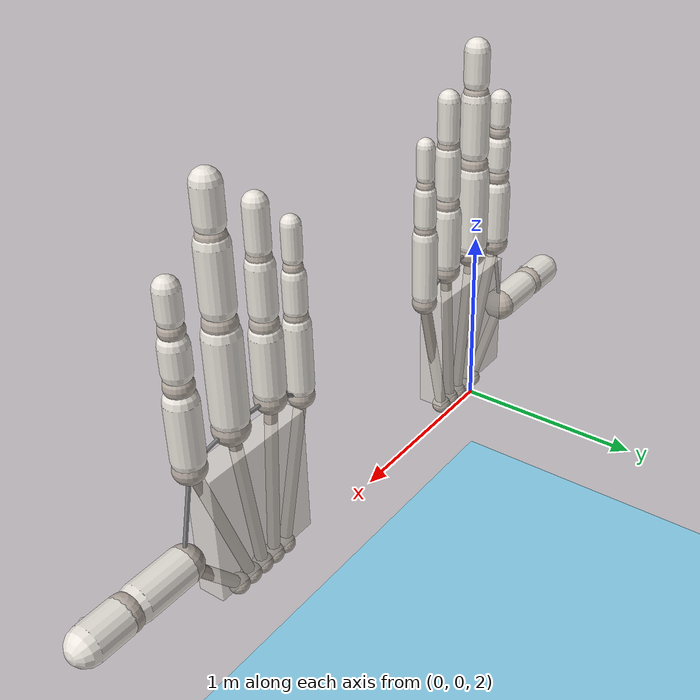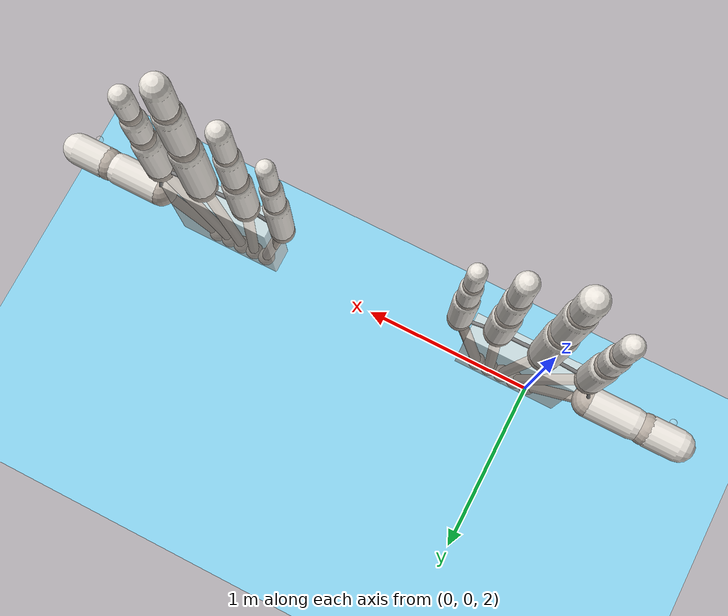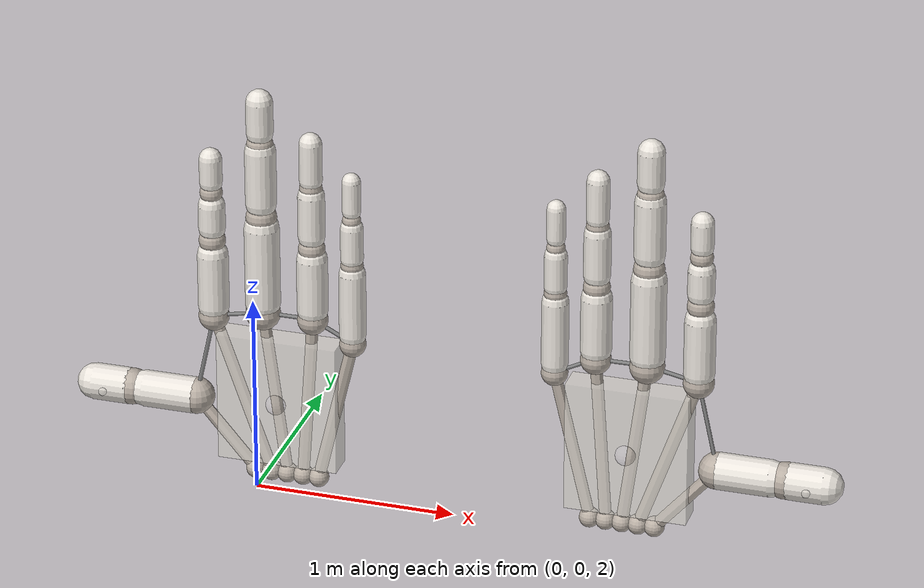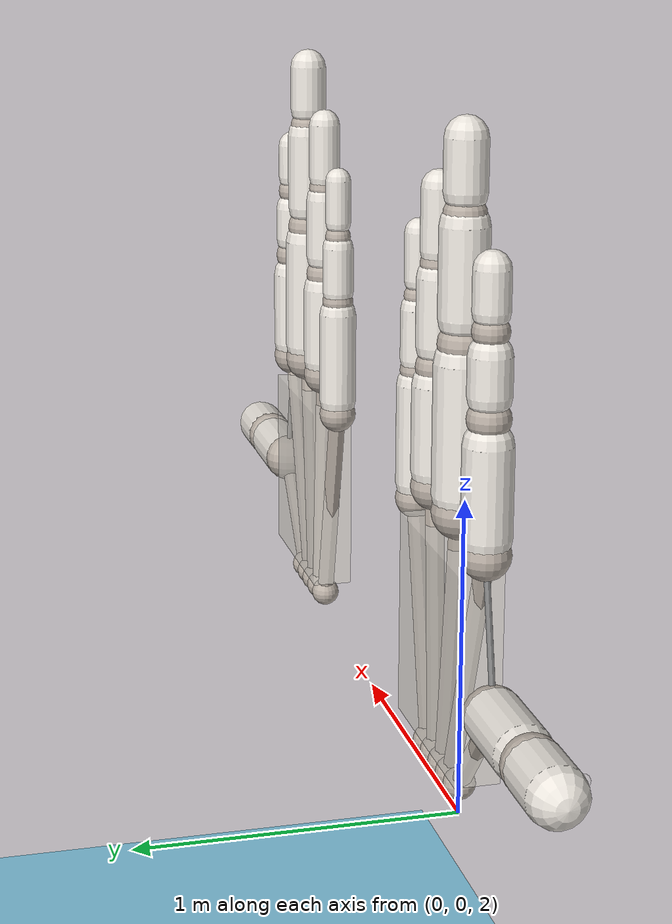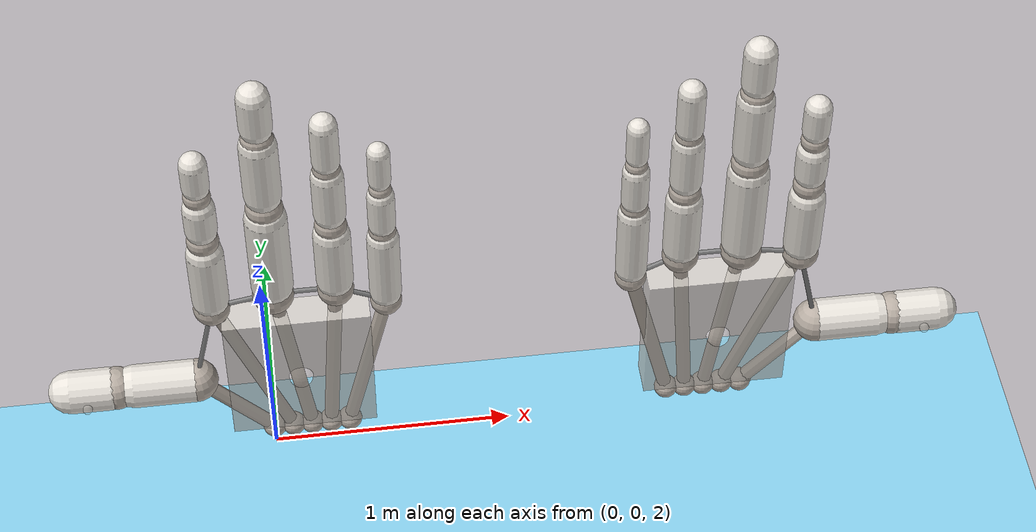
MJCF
<mujoco>
  <compiler angle="degree"/>
  <option  gravity="0 0 0" timestep="0.001"/>

  <worldbody>
    <light pos="0 0 100"/>
    <geom type="plane" size="50 50 0.1" pos="0 0 0" rgba="0.53 0.81 0.92 1"/>

    <body name="base" pos="0 0 2" euler="0 0 0">

      <site name="jointf01_site" pos="0 0 0.1"/>
      <site name="jointf02_site" pos="0.08 0 0.1"/>
      <site name="jointf03_site" pos="0.16 0 0.1"/>
      <site name="jointf04_site" pos="0.24 0 0.1"/>
      <site name="jointf05_site" pos="0.32 0 0.1"/>

      <geom name="jointf01" type="sphere" size="0.05" pos="0 0 0.1" rgba="0.72 0.68 0.64 1"/>
      <geom name="jointf02" type="sphere" size="0.05" pos="0.08 0 0.1" rgba="0.72 0.68 0.64 1"/>
      <geom name="jointf03" type="sphere" size="0.05" pos="0.16 0 0.1" rgba="0.72 0.68 0.64 1"/>
      <geom name="jointf04" type="sphere" size="0.05" pos="0.24 0 0.1" rgba="0.72 0.68 0.64 1"/>
      <geom name="jointf05" type="sphere" size="0.05" pos="0.32 0 0.1" rgba="0.72 0.68 0.64 1"/>

      <geom name="jointf07" type="box" size="0.3 0.07 0.33" pos="0.13 0 0.5" rgba="0.91 0.89 0.86 0.7" solref="0.02 2"/>
            <site name="hand_touch" size="0.05" rgba="0.91 0.89 0.86 0.2" pos=" 0.13 -0.07 0.5"/>
      <!-- Указательный палец -->
      <body name="finger1_part1">
        <joint name="jointf11" type="hinge" axis="1 0 0" pos="-0.2 0 0.9" range="0 90" damping="0.5"/>
        <site name="jointf11_site" pos="-0.2 0 0.9"/>
        <geom name="jointf11_type" type="sphere" size="0.075" pos="-0.2 0 0.9" rgba="0.72 0.68 0.64 1"/>
        <geom name="bonef11" type="capsule" size="0.075" fromto="-0.2 0 0.95 -0.2 0 1.225" rgba="0.91 0.89 0.86 1"/>

        <body name="finger1_part2">
          <joint name="jointf12" type="hinge" axis="1 0 0" pos="-0.2 0 1.3" range="0 90" damping="0.3"/>
          <site name="jointf12_site" pos="-0.2 0 1.3"/>
          <geom name="jointf12_type" type="sphere" size="0.065" pos="-0.2 0 1.3" rgba="0.72 0.68 0.64 1"/>
          <geom name="bonef12" type="capsule" size="0.065" fromto="-0.2 0 1.365 -0.2 0 1.4825" rgba="0.91 0.89 0.86 1"/>

          <body name="finger1_part3">
            <joint name="jointf13" type="hinge" axis="1 0 0" pos="-0.2 0 1.55" range="0 90" damping="0.2"/>
            <site name="jointf13_site" pos="-0.2 0 1.55"/>
            <geom name="jointf13_type" type="sphere" size="0.055" pos="-0.2 0 1.55" rgba="0.72 0.68 0.64 1"/>
            <geom name="bonef13" type="capsule" size="0.055" fromto="-0.2 0 1.605 -0.2 0 1.725" rgba="0.91 0.89 0.86 1"/>
          </body>
        </body>
      </body>

      <!-- Средний палец -->
      <body name="finger2_part1">
        <joint name="jointf21" type="hinge" axis="1 0 0" pos="0.05 0 0.95" range="0 90"/>
        <site name="jointf21_site" pos="0.05 0 0.95"/>
        <geom name="jointf21_type" type="sphere" size="0.085" pos="0.05 0 0.95" rgba="0.72 0.68 0.64 1"/>
        <geom name="bonef21" type="capsule" size="0.085" fromto="0.05 0.0 1 0.05 0.0 1.4" rgba="0.91 0.89 0.86 1"/>

        <body name="finger2_part2">
          <joint name="jointf22" type="hinge" axis="1 0 0" pos="0.05 0.0 1.4549999999999998" range="0 90" />
          <site name="jointf22_site" pos="0.05 0.0 1.4549999999999998"/>
          <geom name="jointf22_type" type="sphere" size="0.075" pos="0.05 0.0 1.454999999999999" rgba="0.72 0.68 0.64 1"/>
          <geom name="bonef22" type="capsule" size="0.075" fromto="0.05 0.0 1.5299999999999998 0.05 0.0 1.8" rgba="0.91 0.89 0.86 1"/>

          <body name="finger2_part3">
            <joint name="jointf23" type="hinge" axis="1 0 0" pos="0.05 0.0 1.8299999999999998" range="0 90" />
            <site name="jointf23_site" pos="0.05 0.0 1.8299999999999998"/>
            <geom name="jointf23_type" type="sphere" size="0.065" pos="0.05 0.0 1.8299999999999998" rgba="0.72 0.68 0.64 1"/>
            <geom name="bonef23" type="capsule" size="0.065" fromto="0.05 0.0 1.8949999999999998 0.05 0.0 2.05" rgba="0.91 0.89 0.86 1"/>
          </body>
        </body>
      </body>

      <!-- Безымянный палец -->
      <body name="finger3_part1">
        <joint name="jointf31" type="hinge" axis="1 0 0" pos="0.3 0 0.95" range="0 90"/>
        <site name="jointf31_site" pos="0.3 0 0.95"/>
        <geom name="jointf31_type" type="sphere" size="0.075" pos="0.3 0 0.95" rgba="0.72 0.68 0.64 1"/>
        <geom name="bonef31" type="capsule" size="0.075" fromto="0.3 0.0 1 0.3 0.0 1.27" rgba="0.91 0.89 0.86 1"/>

        <body name="finger3_part2">
          <joint name="jointf32" type="hinge" axis="1 0 0" pos="0.3 0.0 1.325" range="0 90" />
          <site name="jointf32_site" pos="0.3 0.0 1.325"/>
          <geom name="jointf32_type" type="sphere" size="0.065" pos="0.3 0.0 1.325" rgba="0.72 0.68 0.64 1"/>
          <geom name="bonef32" type="capsule" size="0.065" fromto="0.3 0.0 1.39 0.3 0.0 1.6" rgba="0.91 0.89 0.86 1"/>

          <body name="finger3_part3">
            <joint name="jointf33" type="hinge" axis="1 0 0" pos="0.3 0.0 1.64" range="0 90" />
            <site name="jointf33_site" pos="0.3 0.0 1.64"/>
            <geom name="jointf33_type" type="sphere" size="0.055" pos="0.3 0.0 1.64" rgba="0.72 0.68 0.64 1"/>
            <geom name="bonef33" type="capsule" size="0.055" fromto="0.3 0.0 1.68 0.3 0.0 1.87" rgba="0.91 0.89 0.86 1"/>
          </body>
        </body>
      </body>

      <!-- Мизинец -->
      <body name="finger4_part1">
        <joint name="jointf41" type="hinge" axis="1 0 0" pos="0.5 0 0.85" range="0 90"/>
        <site name="jointf41_site" pos="0.5 0 0.85"/>
        <geom name="jointf41_type" type="sphere" size="0.065" pos="0.5 0 0.85" rgba="0.72 0.68 0.64 1"/>
        <geom name="bonef41" type="capsule" size="0.065" fromto="0.5 0.0 0.9 0.5 0.0 1.22" rgba="0.91 0.89 0.86 1"/>

        <body name="finger4_part2">
          <joint name="jointf42" type="hinge" axis="1 0 0" pos="0.5 0.0 1.265" range="0 90" />
          <site name="jointf42_site" pos="0.5 0.0 1.265"/>
          <geom name="jointf42_type" type="sphere" size="0.055" pos="0.5 0.0 1.265" rgba="0.72 0.68 0.64 1"/>
          <geom name="bonef42" type="capsule" size="0.055" fromto="0.5 0.0 1.3 0.5 0.0 1.46" rgba="0.91 0.89 0.86 1"/>

          <body name="finger4_part3">
            <joint name="jointf43" type="hinge" axis="1 0 0" pos="0.5 0.0 1.5199999999999998" range="0 90" />
            <site name="jointf43_site" pos="0.5 0.0 1.5199999999999998"/>
            <site name="jointf4_tip" pos="0.5 0.0 1.7" size="0.01" />
            <geom name="jointf43_type" type="sphere" size="0.045" pos="0.5 0.0 1.5" rgba="0.72 0.68 0.64 1"/>
            <geom name="bonef43" type="capsule" size="0.045" fromto="0.5 0.0 1.55 0.5 0.0 1.7" rgba="0.91 0.89 0.86 1"/>
          </body>
        </body>
      </body>

      <body name="finger5_part1">
        <joint name="jointf51" type="hinge" axis="0 0 1" pos="-0.3 0 0.45" range="0 90"/>
        <site name="jointf51_site" pos="-0.3 0 0.45"/>
        <geom name="jointf51_type" type="sphere" size="0.09" pos="-0.3 0 0.45" rgba="0.72 0.68 0.64 1"/>
        <geom name="bonef51" type="capsule" size="0.09" fromto="-0.305 0.0 0.45 -0.56 0.0 0.45" rgba="0.91 0.89 0.86 1"/>

        <body name="finger5_part2">
          <joint name="jointf52" type="hinge" axis="0 0 1" pos="-0.63 0 0.45" range="0 90"/>
          <site name="jointf52_site" pos="-0.63 0 0.45"/>
          <site name="f5_tip" size="0.02" pos="-0.75 -0.1 0.45" rgba="0.91 0.89 0.86 0.2"/>
          <geom name="jointf52_type" type="sphere" size="0.09" pos="-0.63 0 0.45" rgba="0.72 0.68 0.64 1"/>
          <geom name="bonef52" type="capsule" size="0.09" fromto="-0.65 0 0.45 -0.82 0.0 0.45" rgba="0.91 0.89 0.86 1"/>
        </body>
      </body>
    </body>

   <!-- Right hand -->
  <body name="base2" pos="2 0 2" >
    <joint name="base2" type="slide"/>
      <site name="jointf01_site2" pos="0 0 0.1"/>
      <site name="jointf02_site2" pos="-0.08 0 0.1"/>
      <site name="jointf03_site2" pos="-0.16 0 0.1"/>
      <site name="jointf04_site2" pos="-0.24 0 0.1"/>
      <site name="jointf05_site2" pos="-0.32 0 0.1"/>

      <geom name="jointf012" type="sphere" size="0.05" pos="0 0 0.1" rgba="0.72 0.68 0.64 1"/>
      <geom name="jointf022" type="sphere" size="0.05" pos="-0.08 0 0.1" rgba="0.72 0.68 0.64 1"/>
      <geom name="jointf032" type="sphere" size="0.05" pos="-0.16 0 0.1" rgba="0.72 0.68 0.64 1"/>
      <geom name="jointf042" type="sphere" size="0.05" pos="-0.24 0 0.1" rgba="0.72 0.68 0.64 1"/>
      <geom name="jointf052" type="sphere" size="0.05" pos="-0.32 0 0.1" rgba="0.72 0.68 0.64 1"/>

      <geom name="jointf072" type="box" size="0.3 0.07 0.33" pos="-0.13 0 0.5" rgba="0.91 0.89 0.86 0.7" solref="0.02 2"/>
      <site name="hand_touch2" size="0.05" rgba="0.91 0.89 0.86 0.2" pos="-0.13 -0.07 0.5"/>

      <body name="finger1_part12">
        <joint name="jointf112" type="hinge" axis="1 0 0" pos="0.2 0 0.9" range="0 90" damping="0.5"/>
        <site name="jointf11_site2" pos="0.2 0 0.9"/>
        <geom name="jointf11_type2" type="sphere" size="0.075" pos="0.2 0 0.9" rgba="0.72 0.68 0.64 1"/>
        <geom name="bonef112" type="capsule" size="0.075" fromto="0.2 0 0.95 0.2 0 1.225" rgba="0.91 0.89 0.86 1"/>

        <body name="finger1_part22">
          <joint name="jointf122" type="hinge" axis="1 0 0" pos="0.2 0 1.3" range="0 90" damping="0.3"/>
          <site name="jointf12_site2" pos="0.2 0 1.3"/>
          <geom name="jointf12_type2" type="sphere" size="0.065" pos="0.2 0 1.3" rgba="0.72 0.68 0.64 1"/>
          <geom name="bonef122" type="capsule" size="0.065" fromto="0.2 0 1.365 0.2 0 1.4825" rgba="0.91 0.89 0.86 1"/>

          <body name="finger1_part32">
            <joint name="jointf132" type="hinge" axis="1 0 0" pos="0.2 0 1.55" range="0 90" damping="0.2"/>
            <site name="jointf13_site2" pos="0.2 0 1.55"/>
            <geom name="jointf13_type2" type="sphere" size="0.055" pos="0.2 0 1.55" rgba="0.72 0.68 0.64 1"/>
            <geom name="bonef132" type="capsule" size="0.055" fromto="0.2 0 1.605 0.2 0 1.725" rgba="0.91 0.89 0.86 1"/>
          </body>
        </body>
      </body>

       <body name="finger2_part12">
          <joint name="jointf212" type="hinge" axis="1 0 0" pos="-0.05 0 0.95" range="0 90"/>
          <site name="jointf21_site2" pos="-0.05 0 0.95"/>
          <geom name="jointf21_type2" type="sphere" size="0.085" pos="-0.05 0 0.95" rgba="0.72 0.68 0.64 1"/>
          <geom name="bonef212" type="capsule" size="0.085" fromto="-0.05 0.0 1 -0.05 0.0 1.4" rgba="0.91 0.89 0.86 1"/>

          <body name="finger2_part22">
            <joint name="jointf222" type="hinge" axis="1 0 0" pos="-0.05 0.0 1.4549999999999998" range="0 90" />
            <site name="jointf22_site2" pos="-0.05 0.0 1.4549999999999998"/>
            <geom name="jointf22_type2" type="sphere" size="0.075" pos="-0.05 0.0 1.454999999999999" rgba="0.72 0.68 0.64 1"/>
            <geom name="bonef222" type="capsule" size="0.075" fromto="-0.05 0.0 1.5299999999999998 -0.05 0.0 1.8" rgba="0.91 0.89 0.86 1"/>

            <body name="finger2_part32">
              <joint name="jointf232" type="hinge" axis="1 0 0" pos="-0.05 0.0 1.8299999999999998" range="0 90" />
              <site name="jointf23_site2" pos="-0.05 0.0 1.8299999999999998"/>
              <geom name="jointf23_type2" type="sphere" size="0.065" pos="-0.05 0.0 1.8299999999999998" rgba="0.72 0.68 0.64 1"/>
              <geom name="bonef232" type="capsule" size="0.065" fromto="-0.05 0.0 1.8949999999999998 -0.05 0.0 2.05" rgba="0.91 0.89 0.86 1"/>
            </body>
        </body>
      </body>

      <body name="finger3_part12">
        <joint name="jointf312" type="hinge" axis="1 0 0" pos="-0.3 0 0.95" range="0 90"/>
        <site name="jointf31_site2" pos="-0.3 0 0.95"/>
        <geom name="jointf31_type2" type="sphere" size="0.075" pos="-0.3 0 0.95" rgba="0.72 0.68 0.64 1"/>
        <geom name="bonef312" type="capsule" size="0.075" fromto="-0.3 0.0 1 -0.3 0.0 1.27" rgba="0.91 0.89 0.86 1"/>

        <body name="finger3_part22">
          <joint name="jointf322" type="hinge" axis="1 0 0" pos="-0.3 0.0 1.325" range="0 90" />
          <site name="jointf32_site2" pos="-0.3 0.0 1.325"/>
          <geom name="jointf32_type2" type="sphere" size="0.065" pos="-0.3 0.0 1.325" rgba="0.72 0.68 0.64 1"/>
          <geom name="bonef322" type="capsule" size="0.065" fromto="-0.3 0.0 1.39 -0.3 0.0 1.6" rgba="0.91 0.89 0.86 1"/>

          <body name="finger3_part32">
            <joint name="jointf332" type="hinge" axis="1 0 0" pos="-0.3 0.0 1.64" range="0 90" />
            <site name="jointf33_site2" pos="-0.3 0.0 1.64"/>
            <geom name="jointf33_type2" type="sphere" size="0.055" pos="-0.3 0.0 1.64" rgba="0.72 0.68 0.64 1"/>
            <geom name="bonef332" type="capsule" size="0.055" fromto="-0.3 0.0 1.68 -0.3 0.0 1.87" rgba="0.91 0.89 0.86 1"/>
          </body>
        </body>
      </body>

      <body name="finger4_part12">
        <joint name="jointf412" type="hinge" axis="1 0 0" pos="-0.5 0 0.85" range="0 90"/>
        <site name="jointf41_site2" pos="-0.5 0 0.85"/>
        <geom name="jointf41_type2" type="sphere" size="0.065" pos="-0.5 0 0.85" rgba="0.72 0.68 0.64 1"/>
        <geom name="bonef412" type="capsule" size="0.065" fromto="-0.5 0.0 0.9 -0.5 0.0 1.22" rgba="0.91 0.89 0.86 1"/>

        <body name="finger4_part22">
          <joint name="jointf422" type="hinge" axis="1 0 0" pos="-0.5 0.0 1.265" range="0 90" />
          <site name="jointf42_site2" pos="-0.5 0.0 1.265"/>
          <geom name="jointf42_type2" type="sphere" size="0.055" pos="-0.5 0.0 1.265" rgba="0.72 0.68 0.64 1"/>
          <geom name="bonef422" type="capsule" size="0.055" fromto="-0.5 0.0 1.3 -0.5 0.0 1.46" rgba="0.91 0.89 0.86 1"/>

          <body name="finger4_part32">
            <joint name="jointf432" type="hinge" axis="1 0 0" pos="-0.5 0.0 1.5199999999999998" range="0 90" />
            <site name="jointf43_site2" pos="-0.5 0.0 1.5199999999999998"/>
            <site name="jointf4_tip2" pos="-0.5 0.0 1.7" size="0.01" />
            <geom name="jointf43_type2" type="sphere" size="0.045" pos="-0.5 0.0 1.5" rgba="0.72 0.68 0.64 1"/>
            <geom name="bonef432" type="capsule" size="0.045" fromto="-0.5 0.0 1.55 -0.5 0.0 1.7" rgba="0.91 0.89 0.86 1"/>
          </body>
        </body>
      </body>

      <body name="finger5_part12">
        <joint name="jointf512" type="hinge" axis="0 0 -1" pos="0.3 0 0.45" range="0 90"/>
        <site name="jointf51_site2" pos="0.3 0 0.45"/>
        <geom name="jointf51_type2" type="sphere" size="0.09" pos="0.3 0 0.45" rgba="0.72 0.68 0.64 1"/>
        <geom name="bonef512" type="capsule" size="0.09" fromto="0.305 0.0 0.45 0.56 0.0 0.45" rgba="0.91 0.89 0.86 1"/>

        <body name="finger5_part22">
          <joint name="jointf522" type="hinge" axis="0 0 -1" pos="0.63 0 0.45" range="0 90"/>
          <site name="jointf52_site2" pos="0.63 0 0.45"/>
          <site name="f5_tip2" size="0.02" pos="0.75 -0.1 0.45" rgba="0.91 0.89 0.86 0.2"/>
          <geom name="jointf52_type2" type="sphere" size="0.09" pos="0.63 0 0.45" rgba="0.72 0.68 0.64 1"/>
          <geom name="bonef522" type="capsule" size="0.09" fromto="0.65 0 0.45 0.82 0.0 0.45" rgba="0.91 0.89 0.86 1"/>
        </body>
      </body>
    </body>
  </worldbody>

  <tendon>
    <fixed name="tendon_flex">
      <joint joint="jointf11" coef="1"/>
      <joint joint="jointf12" coef="0.5"/>
      <joint joint="jointf13" coef="0.2"/>

      <joint joint="jointf21" coef="1"/>
      <joint joint="jointf22" coef="0.3"/>
      <joint joint="jointf23" coef="0.1"/>

      <joint joint="jointf31" coef="1"/>
      <joint joint="jointf32" coef="0.5"/>
      <joint joint="jointf33" coef="0.3"/>

      <joint joint="jointf41" coef="1"/>
      <joint joint="jointf42" coef="0.5"/>
      <joint joint="jointf43" coef="0.3"/>

      <joint joint="jointf51" coef="1"/>
      <joint joint="jointf52" coef="0.2"/>
    </fixed>

    <spatial name="bones" stiffness="0" width="0.01">
      <site site="jointf51_site"/>
      <site site="jointf11_site"/>
      <site site="jointf21_site"/>
      <site site="jointf31_site"/>
      <site site="jointf41_site"/>
    </spatial>

    <spatial name="bones_05" stiffness="0" width="0.03" rgba="0.72 0.68 0.64 1">
      <site site="jointf01_site"/>
      <site site="jointf51_site"/>
    </spatial>

    <spatial name="bones_01" stiffness="0" width="0.03" rgba="0.72 0.68 0.64 1">
      <site site="jointf02_site"/>
      <site site="jointf11_site"/>
    </spatial>

    <spatial name="bones_02" stiffness="0" width="0.03" rgba="0.72 0.68 0.64 1">
      <site site="jointf03_site"/>
      <site site="jointf21_site"/>
    </spatial>

    <spatial name="bones_03" stiffness="0" width="0.03" rgba="0.72 0.68 0.64 1">
      <site site="jointf04_site"/>
      <site site="jointf31_site"/>
    </spatial>

    <spatial name="bones_04" stiffness="0" width="0.03" rgba="0.72 0.68 0.64 1">
      <site site="jointf05_site"/>
      <site site="jointf41_site"/>
    </spatial>

    <fixed name="tendon_flex2">
      <joint joint="jointf112" coef="1"/>
      <joint joint="jointf122" coef="0.5"/>
      <joint joint="jointf132" coef="0.2"/>

      <joint joint="jointf212" coef="1"/>
      <joint joint="jointf222" coef="0.3"/>
      <joint joint="jointf232" coef="0.1"/>

      <joint joint="jointf312" coef="1"/>
      <joint joint="jointf322" coef="0.5"/>
      <joint joint="jointf332" coef="0.3"/>

      <joint joint="jointf412" coef="1"/>
      <joint joint="jointf422" coef="0.5"/>
      <joint joint="jointf432" coef="0.3"/>

      <joint joint="jointf512" coef="1"/>
      <joint joint="jointf522" coef="0.2"/>
    </fixed>

    <spatial name="bones2" stiffness="0" width="0.01">
      <site site="jointf51_site2"/>
      <site site="jointf11_site2"/>
      <site site="jointf21_site2"/>
      <site site="jointf31_site2"/>
      <site site="jointf41_site2"/>
    </spatial>

    <spatial name="bones_052" stiffness="0" width="0.03" rgba="0.72 0.68 0.64 1">
      <site site="jointf01_site2"/>
      <site site="jointf51_site2"/>
    </spatial>

    <spatial name="bones_012" stiffness="0" width="0.03" rgba="0.72 0.68 0.64 1">
      <site site="jointf02_site2"/>
      <site site="jointf11_site2"/>
    </spatial>

    <spatial name="bones_022" stiffness="0" width="0.03" rgba="0.72 0.68 0.64 1">
      <site site="jointf03_site2"/>
      <site site="jointf21_site2"/>
    </spatial>

    <spatial name="bones_032" stiffness="0" width="0.03" rgba="0.72 0.68 0.64 1">
      <site site="jointf04_site2"/>
      <site site="jointf31_site2"/>
    </spatial>

    <spatial name="bones_042" stiffness="0" width="0.03" rgba="0.72 0.68 0.64 1">
      <site site="jointf05_site2"/>
      <site site="jointf41_site2"/>
    </spatial>
  </tendon>

  <actuator>
        <motor name="finger11" joint="jointf11" gear="30"/>
        <motor name="finger21" joint="jointf21" gear="90"/>
        <motor name="finger31" joint="jointf31" gear="30"/>
        <motor name="finger41" joint="jointf41" gear="30"/>
        <motor name="finger51" joint="jointf51" gear="30"/>

        <motor name="finger12" joint="jointf12" gear="7"/>
        <motor name="finger22" joint="jointf22" gear="15"/>
        <motor name="finger32" joint="jointf32" gear="7"/>
        <motor name="finger42" joint="jointf42" gear="7"/>
        <motor name="finger52" joint="jointf52" gear="5"/>

        <motor name="finger13" joint="jointf13" gear="2"/>
        <motor name="finger23" joint="jointf23" gear="5"/>
        <motor name="finger33" joint="jointf33" gear="2"/>
        <motor name="finger43" joint="jointf43" gear="1"/>

        <motor name="finger112" joint="jointf112" gear="30"/>
        <motor name="finger122" joint="jointf122" gear="7"/>
        <motor name="finger132" joint="jointf132" gear="2"/>

        <motor name="finger212" joint="jointf212" gear="90"/>
        <motor name="finger222" joint="jointf222" gear="15"/>
        <motor name="finger232" joint="jointf232" gear="5"/>

        <motor name="finger312" joint="jointf312" gear="30"/>
        <motor name="finger322" joint="jointf322" gear="7"/>
        <motor name="finger332" joint="jointf332" gear="2"/>

        <motor name="finger412" joint="jointf412" gear="30"/>
        <motor name="finger422" joint="jointf422" gear="7"/>
        <motor name="finger432" joint="jointf432" gear="1"/>

        <motor name="finger512" joint="jointf512" gear="30"/>
        <motor name="finger522" joint="jointf522" gear="5"/>

        <motor name="base2_" joint="base2" gear="50"/>

  </actuator>

  <sensor>
        <touch name="touch_hand" site="hand_touch"/>
        <touch name="finger1_t" site="jointf12_site"/>
        <touch name="finger2_t" site="jointf22_site"/>
        <touch name="finger3_t" site="jointf32_site"/>
        <touch name="tip_f5" site="f5_tip"/>

        <touch name="touch_hand2" site="hand_touch2"/>
        <touch name="finger1_t2" site="jointf12_site2"/>
        <touch name="finger2_t2" site="jointf22_site2"/>
        <touch name="finger3_t2" site="jointf32_site2"/>
        <touch name="tip_f52" site="f5_tip2"/>
  </sensor>
</mujoco>
